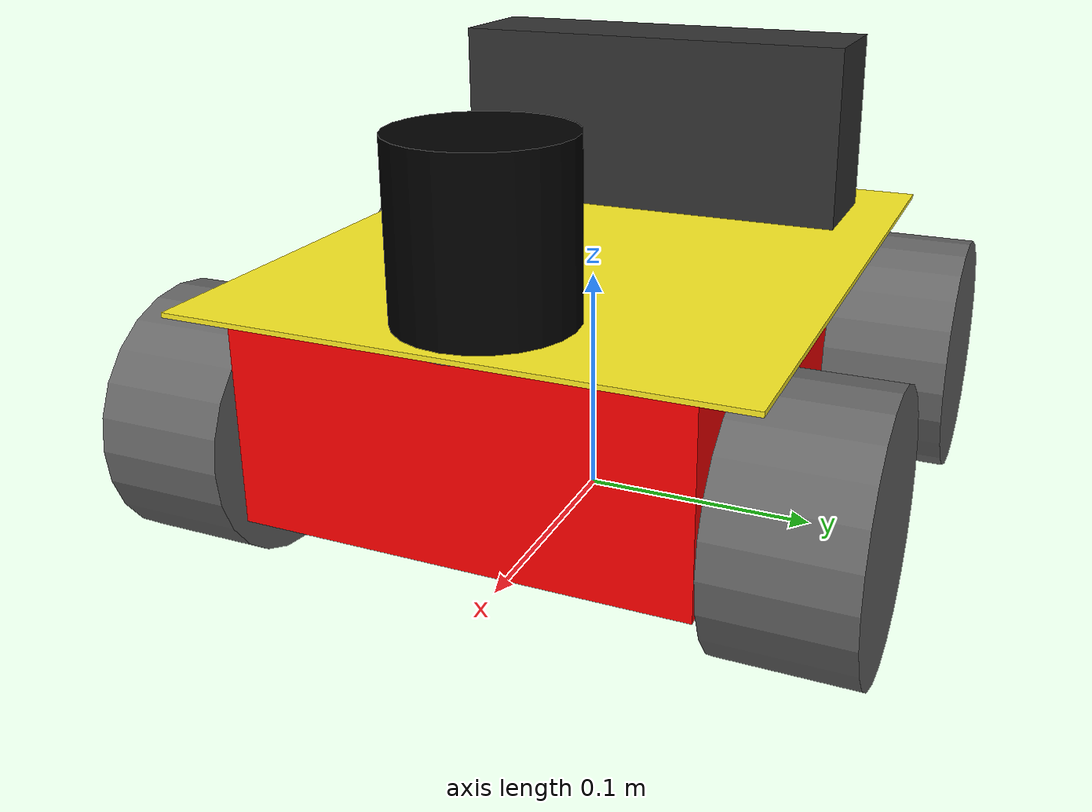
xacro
<?xml version="1.0"?>
<robot xmlns:xacro="http://www.ros.org/wiki/xacro"  name="robot">

    <xacro:include filename="robot_core.urdf.xacro"/>

    <xacro:include filename="gazebo_control.xacro"/>

    <xacro:include filename="lidar.urdf.xacro"/>

</robot>

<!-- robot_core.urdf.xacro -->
<robot xmlns:xacro="http://www.ros.org/wiki/xacro">

  <xacro:include filename="inertial_macros.xacro" />
    <material name="white">
        <color rgba="1.0 1.0 1.0 1.0"/>
    </material>
    <material name="orange">
        <color rgba="1.0 0.3 0.1 1.0"/>
    </material>
    <material name="blue">
        <color rgba="0.2 0.2 1.0 1.0"/>
    </material>
    <material name="black">
        <color rgba="0.0 0.0 0.0 1.0"/>
    </material>
    <material name="wolf-yellow">
        <color rgba="1 0.9373 0.1372 1" />
    </material>
    <material name="wolf-gray">
        <color rgba="0.2 0.2 0.2 1" />
    </material>
    <material name="wolf-lidar">
        <color rgba="0.792156862745098 0.819607843137255 0.933333333333333 1" />
    </material>
    <material name="wolf-tire">
        <color rgba="0.4 0.4 0.4 1" />
    </material>

    <link name="base_link"></link>

    <!--BASE_FOOTPRINT LINK-->
    <joint name="base_footprint_joint" type="fixed">
        <parent link="base_link"/>
        <child link="base_footprint"/>
        <origin xyz="0 0 0" rpy="0 0 0"/>
    </joint>

    <link name="base_footprint">
    </link>

    <joint name="chassis_joint" type="fixed">
        <origin xyz="0 0 0.03173" rpy="0.0 0.0 0.0"/>
        <parent link="base_link"/>
        <child link="chassis"/>
    </joint>
    <link name="chassis">
        <visual name="">
            <origin xyz="0 0 0.03713" rpy="0 0 0" />
            <geometry>
                <box size= "0.2625 0.180 0.08074" />
            </geometry>
            <material name="wolf-gray">
                <color rgba="1.0 0.0 0.0 1.0"/>
                <texture filename=""/>
            </material>
        </visual>
        <collision>
            <origin xyz="0 0 0.03713" rpy="0 0 0" />
            <geometry>
                <box size= "0.2625 0.180 0.08074" />
            </geometry>
        </collision>
        <xacro:inertial_box mass="0.5" x="0.2625" y="0.180" z="0.08074">
        <origin xyz="0 0 0.03713" rpy="0 0 0"/>
        </xacro:inertial_box>
    </link>
    <gazebo reference="chassis">
        <material>Gazebo/Black</material>
    </gazebo>

<!-- TOP PLATE LINK -->
   <joint name="top_plate_joint" type="fixed">
     <parent link="chassis"/>
     <child link="top_plate_link"/>
     <origin xyz = "0 0 0" />
   </joint>

  <link name="top_plate_link">
    <visual>
      <origin xyz="0 0 0.08074" rpy="0 0 0" />
      <geometry>
        <box size= "0.278 0.226 0.002" />
      </geometry>
      <material name="wolf-yellow">
      </material>
    </visual>
    <collision>
      <origin xyz="0 0 0.08074" rpy="0 0 0" />
      <geometry>
        <box size= "0.278 0.226 0.002" />
      </geometry>
    </collision>
    <xacro:inertial_box mass="0.5" x="0.278" y="0.226" z="0.002">
      <origin xyz="0 0 0.08074" rpy="0 0 0"/>
    </xacro:inertial_box>
  </link>
  <gazebo reference="top_plate_link">
    <material>Gazebo/Yellow</material>
  </gazebo>

<!-- BACK HOLDER LINK -->
   <joint name="back_holder_joint" type="fixed">
     <parent link="chassis"/>
     <child link="back_holder_link"/>
     <origin xyz = "0 0 0" />
   </joint>

  <link name="back_holder_link">
    <visual>
      <origin xyz="-0.086 0 0.1204" rpy="0 0 0" />
      <geometry>
        <box size= "0.050 0.18 0.083" />
      </geometry>
      <material name="wolf-gray">
      </material>
    </visual>
    <collision>
      <origin xyz="-0.086 0 0.1204" rpy="0 0 0" />
      <geometry>
        <box size= "0.050 0.18 0.083" />
      </geometry>
    </collision>
    <xacro:inertial_box mass="0.5" x="0.050" y="0.18" z="0.083">
      <origin xyz="-0.086 0 0.1204" rpy="0 0 0" />
    </xacro:inertial_box>
  </link>
  <gazebo reference="back_holder_link">
    <material>Gazebo/DarkGrey</material>
  </gazebo>

 <!-- FRONT RIGHT WHEEL -->
  <joint name="front_right_joint" type="continuous">
    <parent link="base_link" />
    <child link="front_right_link" />
    <origin
      xyz="0.089999999918902 -0.120145200302238 0.0525"
      rpy="${pi/2} 0 0" />
    <axis xyz="0 0 -1" />
  </joint>

  <link name="front_right_link">
    <visual>
      <geometry>
        <cylinder radius="0.0525" length="0.053" />
      </geometry>
      <material name="wolf-tire">
      </material>
    </visual>
    <collision>
      <geometry>
        <cylinder radius="0.0525" length="0.053" />
      </geometry>
    </collision>
    <xacro:inertial_cylinder mass="0.5" radius="0.0525" length="0.053">
      <origin xyz="0 0 0" rpy="0 0 0" />
    </xacro:inertial_cylinder>
  </link>
  <gazebo reference="front_right_link">
    <material>Gazebo/Grey</material>
  </gazebo>

  <!-- FRONT LEFT WHEEL -->
  <joint name="front_left_joint" type="continuous">
    <parent link="base_link" />
    <child link="front_left_link" />
    <origin
      xyz="0.089999999918902 0.120145200302238 0.0525"
      rpy="-${pi/2} 0 0" />
    <axis xyz="0 0 1" />
  </joint>

  <link name="front_left_link">
    <visual>
      <geometry>
        <cylinder radius="0.0525" length="0.053" />
      </geometry>
      <material name="wolf-tire">
      </material>
    </visual>
    <collision>
      <geometry>
        <cylinder radius="0.0525" length="0.053" />
      </geometry>
    </collision>
    <xacro:inertial_cylinder mass="0.5" radius="0.0525" length="0.053">
      <origin xyz="0 0 0" rpy="0 0 0" />
    </xacro:inertial_cylinder>
  </link>
  <gazebo reference="front_left_link">
    <material>Gazebo/Grey</material>
  </gazebo>

<!-- BACK RIGHT WHEEL -->
  <joint name="back_right_joint" type="continuous">
    <parent link="base_link" />
    <child link="back_right_link" />
    <origin
      xyz="-0.089999999918902 -0.120145200302238 0.0525"
      rpy="${pi/2} 0 0" />
    <axis xyz="0 0 -1" />
  </joint>

  <link name="back_right_link">
    <visual>
      <geometry>
        <cylinder radius="0.0525" length="0.053" />
      </geometry>
      <material name="wolf-tire">
      </material>
    </visual>
    <collision>
      <geometry>
        <cylinder radius="0.0525" length="0.053" />
      </geometry>
    </collision>
    <xacro:inertial_cylinder mass="0.5" radius="0.0525" length="0.053">
      <origin xyz="0 0 0" rpy="0 0 0" />
    </xacro:inertial_cylinder>
  </link>
  <gazebo reference="back_right_link">
    <material>Gazebo/Grey</material>
  </gazebo>

  <!-- BACK LEFT WHEEL -->
  <joint name="back_left_joint" type="continuous">
    <parent link="base_link" />
    <child link="back_left_link" />
    <origin
      xyz="-0.089999999918902 0.120145200302238 0.0525"
      rpy="-${pi/2} 0 0" />
    <axis xyz="0 0 1" />
  </joint>

  <link name="back_left_link">
    <visual>
      <geometry>
        <cylinder radius="0.0525" length="0.053" />
      </geometry>
      <material name="wolf-tire">
      </material>
    </visual>
    <collision>
      <geometry>
        <cylinder radius="0.0525" length="0.053" />
      </geometry>
    </collision>
    <xacro:inertial_cylinder mass="0.5" radius="0.0525" length="0.053">
      <origin xyz="0 0 0" rpy="0 0 0" />
    </xacro:inertial_cylinder>
  </link>
  <gazebo reference="back_left_link">
    <material>Gazebo/Grey</material>
  </gazebo>

</robot>

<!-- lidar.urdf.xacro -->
<robot xmlns:xacro="http://www.ros.org/wiki/xacro" >

    <joint name="laser_joint" type="fixed">
        <parent link="chassis"/>
        <child link="laser_frame"/>
        <origin xyz="0.1 0 0.114" rpy="0 0 0" />

    </joint>

    <link name="laser_frame">
        <visual>
            <geometry>
                <cylinder radius="0.035" length="0.0729"/>
            </geometry>
            <material name="black"/>
        </visual>
        <collision>
            <geometry>
                <cylinder radius="0.035" length="0.04"/>
            </geometry>
        </collision>
        <xacro:inertial_cylinder mass="0.1" length="0.035" radius="0.0729">
            <origin xyz = "0 0 0" rpy = "0 0 0 "/>
        </xacro:inertial_cylinder>
    </link>

     <gazebo reference="laser_frame">
        <material>Gazebo/Black</material>

        <sensor name="laser" type="ray">
            <pose> 0 0 0 0 0 0 </pose>
            <visualize>true</visualize>
            <update_rate>10</update_rate>
            <ray>
                <scan>
                    <horizontal>
                        <samples>360</samples>
                        <min_angle>-3.14</min_angle>
                        <max_angle>3.14</max_angle>
                    </horizontal>
                </scan>
                <range>
                    <min>0.3</min>
                    <max>12</max>
                </range>
            </ray>
            <plugin name="laser_controller"
            filename="libgazebo_ros_ray_sensor.so">
                <ros>
                    <argument>~/out:=scan</argument>
                </ros>
                <output_type>sensor_msgs/LaserScan</output_type>
                <frame_name>laser_frame</frame_name>
            </plugin>
        </sensor>
    </gazebo>

</robot>
